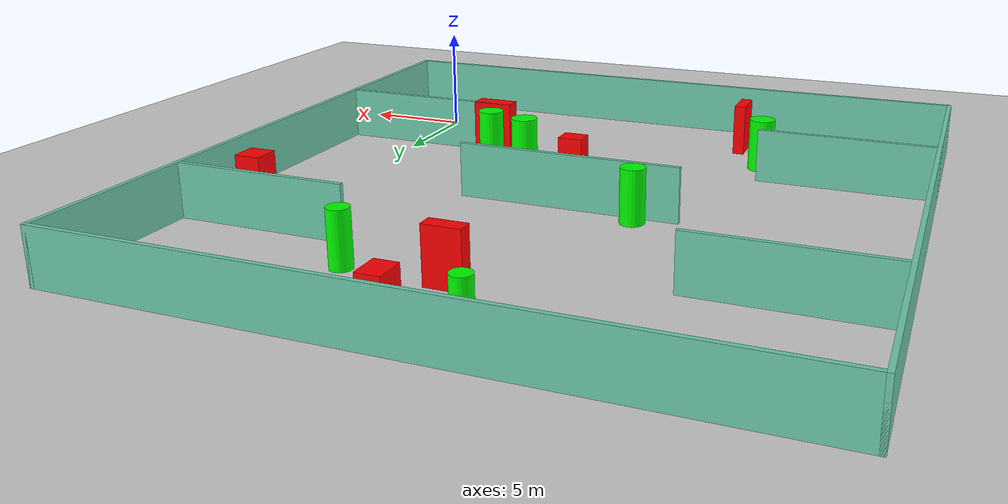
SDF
<sdf version="1.7">
 <world name="default">
  <light name="sun" type="directional">
   <pose>0 0 10 0 -0 0</pose>
   <diffuse>0.8 0.8 0.8 1</diffuse>
   <specular>0.2 0.2 0.2 1</specular>
   <attenuation>
    <range>1000</range>
    <constant>0.9</constant>
    <linear>0.01</linear>
    <quadratic>0.001</quadratic>
   </attenuation>
   <direction>-0.5 0.1 -0.9</direction>
   <spot><inner_angle>0</inner_angle><outer_angle>0</outer_angle><falloff>0</falloff></spot>
  </light>
  <model name="ground_plane">
   <static>1</static>
   <link name="link">
    <collision name="collision">
     <geometry><plane><normal>0 0 1</normal><size>100 100</size></plane></geometry>
     <surface>
      <contact><collide_bitmask>65535</collide_bitmask></contact>
      <friction><ode><mu>100</mu><mu2>50</mu2></ode></friction>
     </surface>
    </collision>
    <visual name="visual">
     <cast_shadows>0</cast_shadows>
     <geometry><plane><normal>0 0 1</normal><size>100 100</size></plane></geometry>
     <material>
      <script><uri>file://media/materials/scripts/gazebo.material</uri><name>Gazebo/Grey</name></script>
     </material>
    </visual>
   </link>
  </model>
  <gravity>0 0 -9.8</gravity>
  <magnetic_field>6e-06 2.3e-05 -4.2e-05</magnetic_field>
  <atmosphere type="adiabatic"/>
  <physics type="ode">
   <max_step_size>0.001</max_step_size>
   <real_time_factor>1</real_time_factor>
   <real_time_update_rate>1000</real_time_update_rate>
  </physics>
  <scene><ambient>0.4 0.4 0.4 1</ambient><background>0.7 0.7 0.7 1</background><shadows>1</shadows></scene>
  <spherical_coordinates>
   <surface_model>EARTH_WGS84</surface_model>
   <latitude_deg>0</latitude_deg>
   <longitude_deg>0</longitude_deg>
   <elevation>0</elevation>
   <heading_deg>0</heading_deg>
  </spherical_coordinates>
  <model name="my_base_walls">
   <link name="Wall_10">
    <collision name="Wall_10_Collision">
     <geometry><box><size>8.2 0.2 2.5</size></box></geometry>
     <pose>0 0 1.25 0 -0 0</pose>
    </collision>
    <visual name="Wall_10_Visual">
     <pose>0 0 1.25 0 -0 0</pose>
     <geometry><box><size>8.2 0.2 2.5</size></box></geometry>
     <material>
      <script><uri>file://media/materials/scripts/gazebo.material</uri><name>Gazebo/Grey</name></script>
      <ambient>0.435294 0.796078 0.67451 1</ambient>
     </material>
     <meta><layer>0</layer></meta>
    </visual>
    <pose>-11 -7 0 0 -0 0</pose>
   </link>
   <link name="Wall_12">
    <collision name="Wall_12_Collision">
     <geometry><box><size>8.2 0.2 2.5</size></box></geometry>
     <pose>0 0 1.25 0 -0 0</pose>
    </collision>
    <visual name="Wall_12_Visual">
     <pose>0 0 1.25 0 -0 0</pose>
     <geometry><box><size>8.2 0.2 2.5</size></box></geometry>
     <material>
      <script><uri>file://media/materials/scripts/gazebo.material</uri><name>Gazebo/Grey</name></script>
      <ambient>0.435294 0.796078 0.67451 1</ambient>
     </material>
     <meta><layer>0</layer></meta>
    </visual>
    <pose>-11 7 0 0 -0 0</pose>
   </link>
   <link name="Wall_14">
    <collision name="Wall_14_Collision">
     <geometry><box><size>8.2 0.2 2.5</size></box></geometry>
     <pose>0 0 1.25 0 -0 0</pose>
    </collision>
    <visual name="Wall_14_Visual">
     <pose>0 0 1.25 0 -0 0</pose>
     <geometry><box><size>8.2 0.2 2.5</size></box></geometry>
     <material>
      <script><uri>file://media/materials/scripts/gazebo.material</uri><name>Gazebo/Grey</name></script>
      <ambient>0.435294 0.796078 0.67451 1</ambient>
     </material>
     <meta><layer>0</layer></meta>
    </visual>
    <pose>11 7 0 0 -0 3.14159</pose>
   </link>
   <link name="Wall_16">
    <collision name="Wall_16_Collision">
     <geometry><box><size>10.2 0.2 2.5</size></box></geometry>
     <pose>0 0 1.25 0 -0 0</pose>
    </collision>
    <visual name="Wall_16_Visual">
     <pose>0 0 1.25 0 -0 0</pose>
     <geometry><box><size>10.2 0.2 2.5</size></box></geometry>
     <material>
      <script><uri>file://media/materials/scripts/gazebo.material</uri><name>Gazebo/Grey</name></script>
      <ambient>0.435294 0.796078 0.67451 1</ambient>
     </material>
     <meta><layer>0</layer></meta>
    </visual>
    <pose>0 0 0 0 -0 3.14159</pose>
   </link>
   <link name="Wall_2">
    <collision name="Wall_2_Collision">
     <geometry><box><size>30.2 0.2 2.5</size></box></geometry>
     <pose>0 0 1.25 0 -0 0</pose>
    </collision>
    <visual name="Wall_2_Visual">
     <pose>0 0 1.25 0 -0 0</pose>
     <geometry><box><size>30.2 0.2 2.5</size></box></geometry>
     <material>
      <script><uri>file://media/materials/scripts/gazebo.material</uri><name>Gazebo/Grey</name></script>
      <ambient>0.435294 0.796078 0.67451 1</ambient>
     </material>
     <meta><layer>0</layer></meta>
    </visual>
    <pose>0 -15 0 0 -0 3.14159</pose>
   </link>
   <link name="Wall_3">
    <collision name="Wall_3_Collision">
     <geometry><box><size>30.2 0.2 2.5</size></box></geometry>
     <pose>0 0 1.25 0 -0 0</pose>
    </collision>
    <visual name="Wall_3_Visual">
     <pose>0 0 1.25 0 -0 0</pose>
     <geometry><box><size>30.2 0.2 2.5</size></box></geometry>
     <material>
      <script><uri>file://media/materials/scripts/gazebo.material</uri><name>Gazebo/Grey</name></script>
      <ambient>0.435294 0.796078 0.67451 1</ambient>
     </material>
     <meta><layer>0</layer></meta>
    </visual>
    <pose>-15 0 0 0 -0 1.5708</pose>
   </link>
   <link name="Wall_4">
    <collision name="Wall_4_Collision">
     <geometry><box><size>30.2 0.2 2.5</size></box></geometry>
     <pose>0 0 1.25 0 -0 0</pose>
    </collision>
    <visual name="Wall_4_Visual">
     <pose>0 0 1.25 0 -0 0</pose>
     <geometry><box><size>30.2 0.2 2.5</size></box></geometry>
     <material>
      <script><uri>file://media/materials/scripts/gazebo.material</uri><name>Gazebo/Grey</name></script>
      <ambient>0.435294 0.796078 0.67451 1</ambient>
     </material>
     <meta><layer>0</layer></meta>
    </visual>
    <pose>0 15 0 0 -0 0</pose>
   </link>
   <link name="Wall_6">
    <collision name="Wall_6_Collision">
     <geometry><box><size>30.2 0.2 2.5</size></box></geometry>
     <pose>0 0 1.25 0 -0 0</pose>
    </collision>
    <visual name="Wall_6_Visual">
     <pose>0 0 1.25 0 -0 0</pose>
     <geometry><box><size>30.2 0.2 2.5</size></box></geometry>
     <material>
      <script><uri>file://media/materials/scripts/gazebo.material</uri><name>Gazebo/Grey</name></script>
      <ambient>0.435294 0.796078 0.67451 1</ambient>
     </material>
     <meta><layer>0</layer></meta>
    </visual>
    <pose>15 0 0 0 -0 1.5708</pose>
   </link>
   <link name="Wall_8">
    <collision name="Wall_8_Collision">
     <geometry><box><size>8.2 0.2 2.5</size></box></geometry>
     <pose>0 0 1.25 0 -0 0</pose>
    </collision>
    <visual name="Wall_8_Visual">
     <pose>0 0 1.25 0 -0 0</pose>
     <geometry><box><size>8.2 0.2 2.5</size></box></geometry>
     <material>
      <script><uri>file://media/materials/scripts/gazebo.material</uri><name>Gazebo/Grey</name></script>
      <ambient>0.435294 0.796078 0.67451 1</ambient>
     </material>
     <meta><layer>0</layer></meta>
    </visual>
    <pose>11 -7 0 0 -0 3.14159</pose>
   </link>
   <static>1</static>
   <pose>-11 11 0 0 -0 0</pose>
  </model>
  <model name="cylinder1">
   <static>1</static>
   <link name="link">
    <inertial>
     <mass>1</mass>
     <inertia><ixx>0.5</ixx><ixy>0</ixy><ixz>0</ixz><iyy>0.5</iyy><iyz>0</iyz><izz>1</izz></inertia>
    </inertial>
    <collision name="collision">
     <geometry><cylinder><radius>0.48586684803122104</radius><length>2.5</length></cylinder></geometry>
    </collision>
    <visual name="visual">
     <geometry><cylinder><radius>0.48586684803122104</radius><length>2.5</length></cylinder></geometry>
     <material>
      <ambient>0 1 0 1</ambient>
      <diffuse>0 1 0 1</diffuse>
      <specular>0.1 0.1 0.1 1</specular>
      <emissive>0 0 0 0</emissive>
     </material>
    </visual>
   </link>
   <pose>-5.44440995714405 20.35104331601707 1.25 0 0 0</pose>
  </model>
  <model name="cylinder2">
   <static>1</static>
   <link name="link">
    <inertial>
     <mass>1</mass>
     <inertia><ixx>0.5</ixx><ixy>0</ixy><ixz>0</ixz><iyy>0.5</iyy><iyz>0</iyz><izz>1</izz></inertia>
    </inertial>
    <collision name="collision">
     <geometry><cylinder><radius>0.635625339569135</radius><length>2.5</length></cylinder></geometry>
    </collision>
    <visual name="visual">
     <geometry><cylinder><radius>0.635625339569135</radius><length>2.5</length></cylinder></geometry>
     <material>
      <ambient>0 1 0 1</ambient>
      <diffuse>0 1 0 1</diffuse>
      <specular>0.1 0.1 0.1 1</specular>
      <emissive>0 0 0 0</emissive>
     </material>
    </visual>
   </link>
   <pose>-6.858349142662476 6.108699294151027 1.25 0 0 0</pose>
  </model>
  <model name="cylinder3">
   <static>1</static>
   <link name="link">
    <inertial>
     <mass>1</mass>
     <inertia><ixx>0.5</ixx><ixy>0</ixy><ixz>0</ixz><iyy>0.5</iyy><iyz>0</iyz><izz>1</izz></inertia>
    </inertial>
    <collision name="collision">
     <geometry><cylinder><radius>0.43111204123301916</radius><length>2.5</length></cylinder></geometry>
    </collision>
    <visual name="visual">
     <geometry><cylinder><radius>0.43111204123301916</radius><length>2.5</length></cylinder></geometry>
     <material>
      <ambient>0 1 0 1</ambient>
      <diffuse>0 1 0 1</diffuse>
      <specular>0.1 0.1 0.1 1</specular>
      <emissive>0 0 0 0</emissive>
     </material>
    </visual>
   </link>
   <pose>-12.56889911943648 24.25846116598936 1.25 0 0 0</pose>
  </model>
  <model name="cylinder4">
   <static>1</static>
   <link name="link">
    <inertial>
     <mass>1</mass>
     <inertia><ixx>0.5</ixx><ixy>0</ixy><ixz>0</ixz><iyy>0.5</iyy><iyz>0</iyz><izz>1</izz></inertia>
    </inertial>
    <collision name="collision">
     <geometry><cylinder><radius>0.6118540949657487</radius><length>2.5</length></cylinder></geometry>
    </collision>
    <visual name="visual">
     <geometry><cylinder><radius>0.6118540949657487</radius><length>2.5</length></cylinder></geometry>
     <material>
      <ambient>0 1 0 1</ambient>
      <diffuse>0 1 0 1</diffuse>
      <specular>0.1 0.1 0.1 1</specular>
      <emissive>0 0 0 0</emissive>
     </material>
    </visual>
   </link>
   <pose>-17.718773066180855 2.1214264403563314 1.25 0 0 0</pose>
  </model>
  <model name="cylinder5">
   <static>1</static>
   <link name="link">
    <inertial>
     <mass>1</mass>
     <inertia><ixx>0.5</ixx><ixy>0</ixy><ixz>0</ixz><iyy>0.5</iyy><iyz>0</iyz><izz>1</izz></inertia>
    </inertial>
    <collision name="collision">
     <geometry><cylinder><radius>0.5571896693383381</radius><length>2.5</length></cylinder></geometry>
    </collision>
    <visual name="visual">
     <geometry><cylinder><radius>0.5571896693383381</radius><length>2.5</length></cylinder></geometry>
     <material>
      <ambient>0 1 0 1</ambient>
      <diffuse>0 1 0 1</diffuse>
      <specular>0.1 0.1 0.1 1</specular>
      <emissive>0 0 0 0</emissive>
     </material>
    </visual>
   </link>
   <pose>-14.222639189726266 11.647607596338002 1.25 0 0 0</pose>
  </model>
  <model name="cylinder6">
   <static>1</static>
   <link name="link">
    <inertial>
     <mass>1</mass>
     <inertia><ixx>0.5</ixx><ixy>0</ixy><ixz>0</ixz><iyy>0.5</iyy><iyz>0</iyz><izz>1</izz></inertia>
    </inertial>
    <collision name="collision">
     <geometry><cylinder><radius>0.6040845893389635</radius><length>2.5</length></cylinder></geometry>
    </collision>
    <visual name="visual">
     <geometry><cylinder><radius>0.6040845893389635</radius><length>2.5</length></cylinder></geometry>
     <material>
      <ambient>0 1 0 1</ambient>
      <diffuse>0 1 0 1</diffuse>
      <specular>0.1 0.1 0.1 1</specular>
      <emissive>0 0 0 0</emissive>
     </material>
    </visual>
   </link>
   <pose>-4.758269538768598 5.414938339087403 1.25 0 0 0</pose>
  </model>
  <model name="box1">
   <static>1</static>
   <link name="link">
    <inertial>
     <mass>1</mass>
     <inertia><ixx>0.083</ixx><ixy>0</ixy><ixz>0</ixz><iyy>0.083</iyy><iyz>0</iyz><izz>0.083</izz></inertia>
    </inertial>
    <collision name="collision">
     <geometry><box><size>1.964848372551736 0.8474227960363352 2.5</size></box></geometry>
    </collision>
    <visual name="visual">
     <geometry><box><size>1.964848372551736 0.8474227960363352 2.5</size></box></geometry>
     <material>
      <ambient>1 0 0 1</ambient>
      <diffuse>1 0 0 1</diffuse>
      <specular>0.1 0.1 0.1 1</specular>
      <emissive>0 0 0 0</emissive>
     </material>
    </visual>
    <sensor name="my_contact" type="contact">
     <contact><collision>box_collision</collision><topic>__default_topic__</topic></contact>
    </sensor>
   </link>
   <pose>-4.191908773895804 3.6864193382313593 1.25 0 0 0</pose>
  </model>
  <model name="box2">
   <static>1</static>
   <link name="link">
    <inertial>
     <mass>1</mass>
     <inertia><ixx>0.083</ixx><ixy>0</ixy><ixz>0</ixz><iyy>0.083</iyy><iyz>0</iyz><izz>0.083</izz></inertia>
    </inertial>
    <collision name="collision">
     <geometry><box><size>1.1219641981141812 0.9249625690368914 2.5</size></box></geometry>
    </collision>
    <visual name="visual">
     <geometry><box><size>1.1219641981141812 0.9249625690368914 2.5</size></box></geometry>
     <material>
      <ambient>1 0 0 1</ambient>
      <diffuse>1 0 0 1</diffuse>
      <specular>0.1 0.1 0.1 1</specular>
      <emissive>0 0 0 0</emissive>
     </material>
    </visual>
    <sensor name="my_contact" type="contact">
     <contact><collision>box_collision</collision><topic>__default_topic__</topic></contact>
    </sensor>
   </link>
   <pose>-10.241282915310089 8.25003829090549 1.25 0 0 0</pose>
  </model>
  <model name="box3">
   <static>1</static>
   <link name="link">
    <inertial>
     <mass>1</mass>
     <inertia><ixx>0.083</ixx><ixy>0</ixy><ixz>0</ixz><iyy>0.083</iyy><iyz>0</iyz><izz>0.083</izz></inertia>
    </inertial>
    <collision name="collision">
     <geometry><box><size>1.1985270038340192 1.1903906250886631 2.5</size></box></geometry>
    </collision>
    <visual name="visual">
     <geometry><box><size>1.1985270038340192 1.1903906250886631 2.5</size></box></geometry>
     <material>
      <ambient>1 0 0 1</ambient>
      <diffuse>1 0 0 1</diffuse>
      <specular>0.1 0.1 0.1 1</specular>
      <emissive>0 0 0 0</emissive>
     </material>
    </visual>
    <sensor name="my_contact" type="contact">
     <contact><collision>box_collision</collision><topic>__default_topic__</topic></contact>
    </sensor>
   </link>
   <pose>1.7382200999999036 15.737529734762091 1.25 0 0 0</pose>
  </model>
  <model name="box4">
   <static>1</static>
   <link name="link">
    <inertial>
     <mass>1</mass>
     <inertia><ixx>0.083</ixx><ixy>0</ixy><ixz>0</ixz><iyy>0.083</iyy><iyz>0</iyz><izz>0.083</izz></inertia>
    </inertial>
    <collision name="collision">
     <geometry><box><size>1.6484809158711804 0.6748056112535151 2.5</size></box></geometry>
    </collision>
    <visual name="visual">
     <geometry><box><size>1.6484809158711804 0.6748056112535151 2.5</size></box></geometry>
     <material>
      <ambient>1 0 0 1</ambient>
      <diffuse>1 0 0 1</diffuse>
      <specular>0.1 0.1 0.1 1</specular>
      <emissive>0 0 0 0</emissive>
     </material>
    </visual>
    <sensor name="my_contact" type="contact">
     <contact><collision>box_collision</collision><topic>__default_topic__</topic></contact>
    </sensor>
   </link>
   <pose>-10.001670624265262 20.478189743920325 1.25 0 0 0</pose>
  </model>
  <model name="box5">
   <static>1</static>
   <link name="link">
    <inertial>
     <mass>1</mass>
     <inertia><ixx>0.083</ixx><ixy>0</ixy><ixz>0</ixz><iyy>0.083</iyy><iyz>0</iyz><izz>0.083</izz></inertia>
    </inertial>
    <collision name="collision">
     <geometry><box><size>0.5471371473609246 1.6258229834595088 2.5</size></box></geometry>
    </collision>
    <visual name="visual">
     <geometry><box><size>0.5471371473609246 1.6258229834595088 2.5</size></box></geometry>
     <material>
      <ambient>1 0 0 1</ambient>
      <diffuse>1 0 0 1</diffuse>
      <specular>0.1 0.1 0.1 1</specular>
      <emissive>0 0 0 0</emissive>
     </material>
    </visual>
    <sensor name="my_contact" type="contact">
     <contact><collision>box_collision</collision><topic>__default_topic__</topic></contact>
    </sensor>
   </link>
   <pose>-16.161103944876345 -0.6872966648803565 1.25 0 0 0</pose>
  </model>
  <model name="box6">
   <static>1</static>
   <link name="link">
    <inertial>
     <mass>1</mass>
     <inertia><ixx>0.083</ixx><ixy>0</ixy><ixz>0</ixz><iyy>0.083</iyy><iyz>0</iyz><izz>0.083</izz></inertia>
    </inertial>
    <collision name="collision">
     <geometry><box><size>0.9939160906400146 1.2643374929109994 2.5</size></box></geometry>
    </collision>
    <visual name="visual">
     <geometry><box><size>0.9939160906400146 1.2643374929109994 2.5</size></box></geometry>
     <material>
      <ambient>1 0 0 1</ambient>
      <diffuse>1 0 0 1</diffuse>
      <specular>0.1 0.1 0.1 1</specular>
      <emissive>0 0 0 0</emissive>
     </material>
    </visual>
    <sensor name="my_contact" type="contact">
     <contact><collision>box_collision</collision><topic>__default_topic__</topic></contact>
    </sensor>
   </link>
   <pose>-9.835407904417773 24.85786170700869 1.25 0 0 0</pose>
  </model>
 </world>
</sdf>
